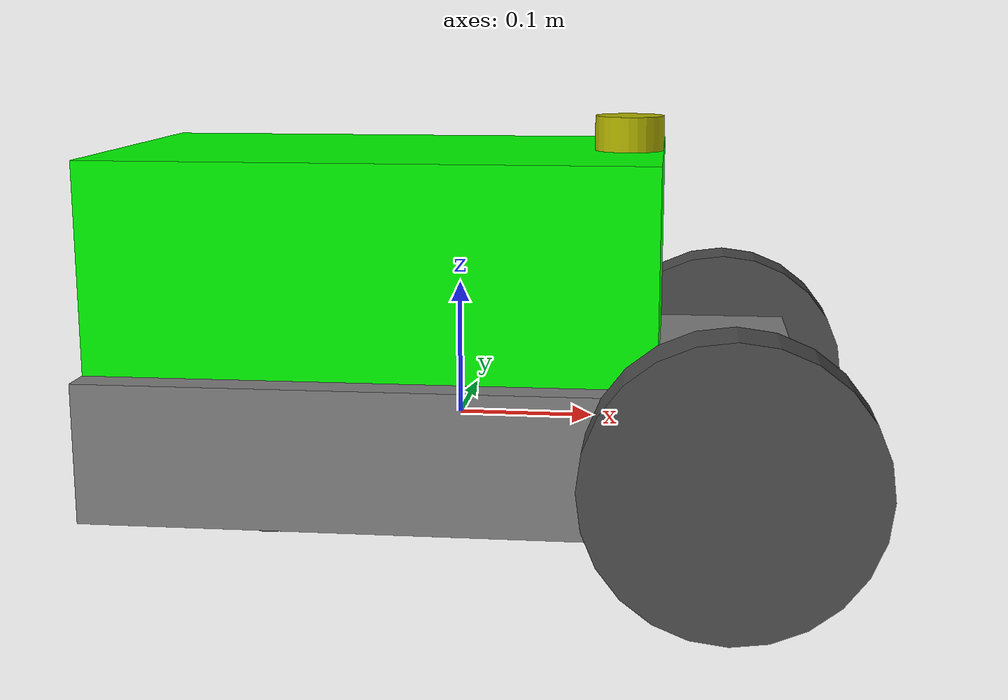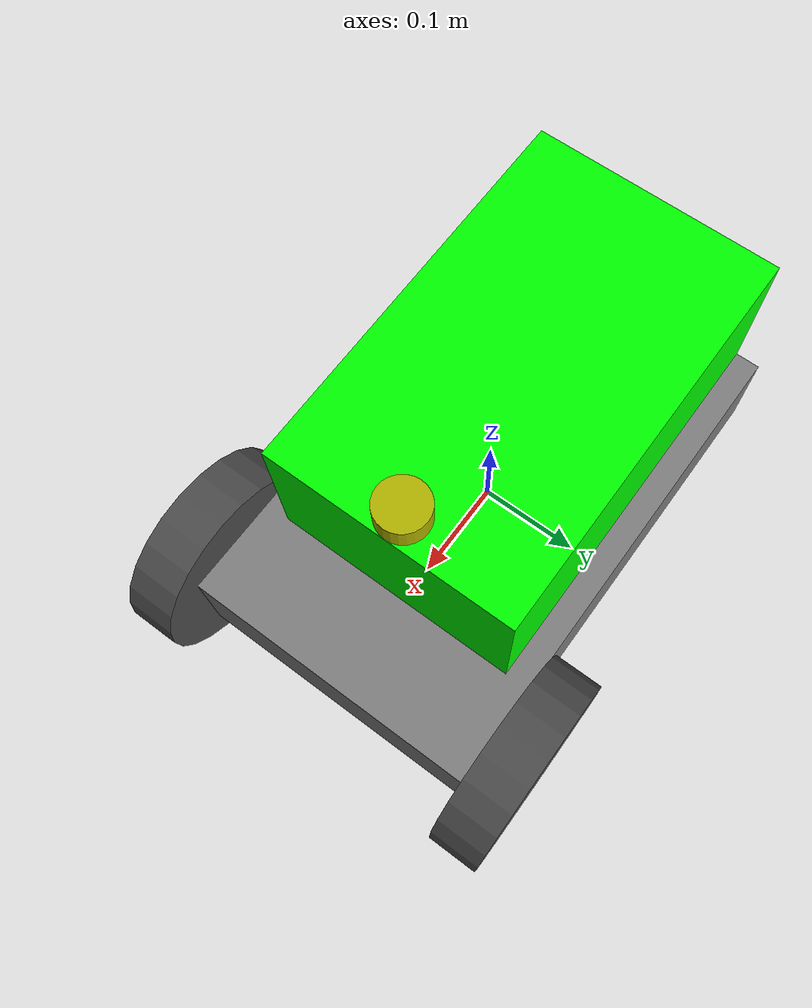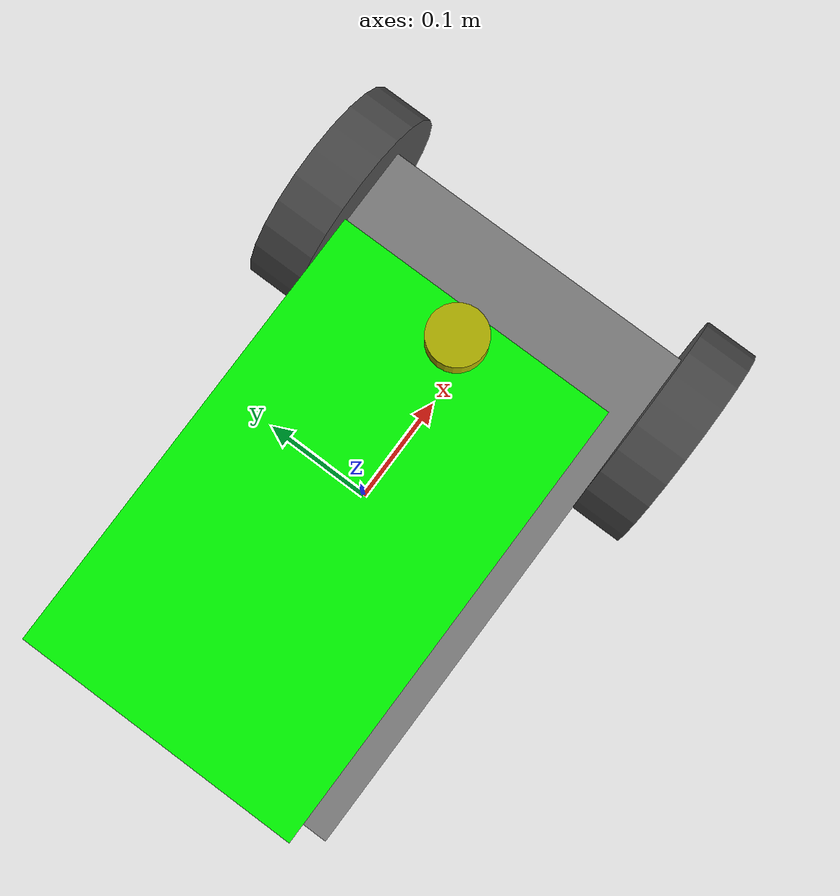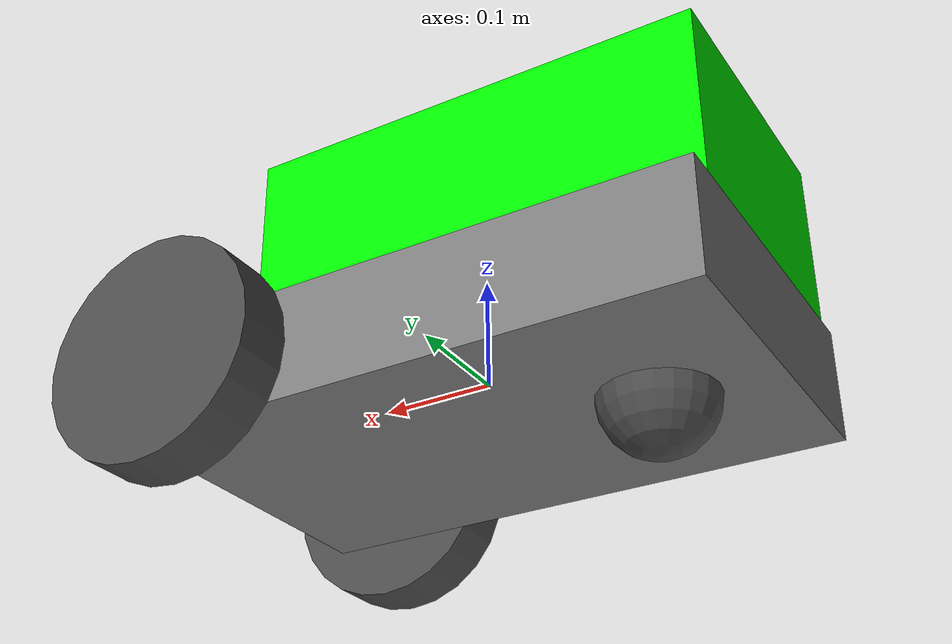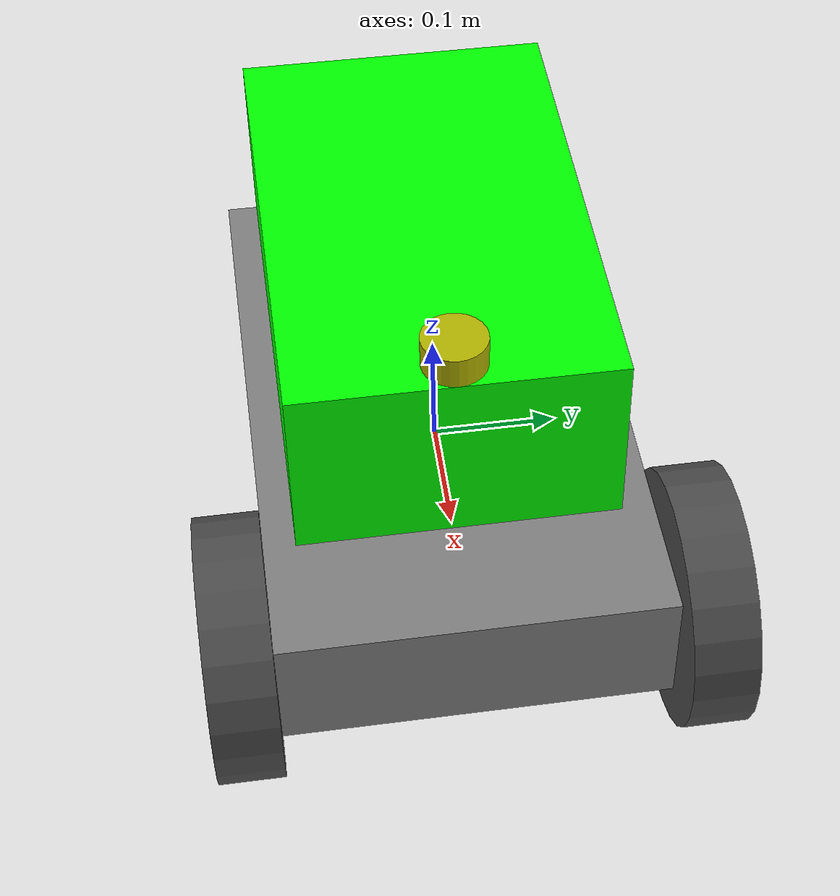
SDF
<?xml version="1.0" ?>
<sdf version="1.5">
     <model name='jetbot'>

      <link name='chassis'>
        <pose>0 0 0 0 0 0</pose>
        <inertial>
          <mass>1.14395</mass>
          <inertia>
            <ixx>0.126164</ixx>
            <ixy>0</ixy>
            <ixz>0</ixz>
            <iyy>0.416519</iyy>
            <iyz>0</iyz>
            <izz>0.481014</izz>
          </inertia>
        </inertial>
        <visual name='visual'>
          <geometry>
            <box>
              <size>0.5 0.3 0.1</size>
            </box>
          </geometry>
          <material>
            <ambient>0.4 0.4 0.4 1</ambient>
            <diffuse>0.5 0.5 0.5 1</diffuse>
          </material>
        </visual>
        <collision name='collision'>
          <geometry>
            <box>
              <size>0.5 0.3 0.1</size>
            </box>
          </geometry>
        </collision>
      </link>

      <link name='cover'>
        <pose>-0.05 0 0.125 0 -0 0</pose>
        <inertial>
          <mass>1.14395</mass>
          <inertia>
            <ixx>0.126164</ixx>
            <ixy>0</ixy>
            <ixz>0</ixz>
            <iyy>0.416519</iyy>
            <iyz>0</iyz>
            <izz>0.481014</izz>
          </inertia>
        </inertial>
        <visual name='visual'>
          <geometry>
            <box>
              <size>0.4 0.25 0.15</size>
            </box>
          </geometry>
          <material>
            <ambient>0 1 0 1</ambient>
            <diffuse>0 1 0 1</diffuse>
          </material>
        </visual>
        <collision name='collision'>
          <geometry>
            <box>
              <size>0.4 0.25 0.15</size>
            </box>
          </geometry>
        </collision>
      </link>

      <link name='left_wheel'>
        <pose>0.2 0.175 0.0 -1.5707 0 0</pose>
        <inertial>
          <mass>2</mass>
          <inertia>
            <ixx>0.145833</ixx>
            <ixy>0</ixy>
            <ixz>0</ixz>
            <iyy>0.145833</iyy>
            <iyz>0</iyz>
            <izz>0.125</izz>
          </inertia>
        </inertial>
        <visual name='visual'>
          <geometry>
            <cylinder>
              <length>0.05</length>
              <radius>0.1</radius>
            </cylinder>
          </geometry>
          <material>
            <ambient>0 0 0 1</ambient>
            <diffuse>0.3 0.3 0.3 1</diffuse>
          </material>
        </visual>
        <collision name='collision'>
          <geometry>
            <cylinder>
              <length>0.05</length>
              <radius>0.1</radius>
            </cylinder>
          </geometry>
          <surface>
            <friction>
              <ode>
                <mu>1</mu>
                <mu2>1</mu2>
                <slip1>0</slip1>
                <slip2>0</slip2>
              </ode>
            </friction>
            <contact>
              <ode>
                <soft_cfm>0</soft_cfm>
                <soft_erp>0.2</soft_erp>
                <kp>1e+13</kp>
                <kd>1</kd>
                <max_vel>0.01</max_vel>
                <min_depth>0.01</min_depth>
              </ode>
            </contact>
          </surface>
        </collision>
      </link>

      <link name='right_wheel'>
        <pose>0.2 -0.175 0.0 -1.5707 0 0</pose>
        <inertial>
          <mass>2</mass>
          <inertia>
            <ixx>0.145833</ixx>
            <ixy>0</ixy>
            <ixz>0</ixz>
            <iyy>0.145833</iyy>
            <iyz>0</iyz>
            <izz>0.125</izz>
          </inertia>
        </inertial>
        <visual name='visual'>
          <geometry>
            <cylinder>
              <length>0.05</length>
              <radius>0.1</radius>
            </cylinder>
          </geometry>
          <material>
            <ambient>0 0 0 1</ambient>
            <diffuse>0.3 0.3 0.3 1</diffuse>
          </material>
        </visual>
        <collision name='collision'>
          <geometry>
            <cylinder>
              <length>0.05</length>
              <radius>0.1</radius>
            </cylinder>
          </geometry>
          <surface>
            <friction>
              <ode>
                <mu>1</mu>
                <mu2>1</mu2>
                <slip1>0</slip1>
                <slip2>0</slip2>
              </ode>
            </friction>
            <contact>
              <ode>
                <soft_cfm>0</soft_cfm>
                <soft_erp>0.2</soft_erp>
                <kp>1e+13</kp>
                <kd>1</kd>
                <max_vel>0.01</max_vel>
                <min_depth>0.01</min_depth>
              </ode>
            </contact>
          </surface>
        </collision>
      </link>

      <link name='caster'>
        <pose>-0.15 -0 -0.05 0 -0 0</pose>
        <inertial>
          <mass>1</mass>
          <inertia>
            <ixx>0.1</ixx>
            <ixy>0</ixy>
            <ixz>0</ixz>
            <iyy>0.1</iyy>
            <iyz>0</iyz>
            <izz>0.1</izz>
          </inertia>
        </inertial>
        <visual name='visual'>
          <geometry>
            <sphere>
              <radius>0.05</radius>
            </sphere>
          </geometry>
          <material>
            <ambient>0 0 0 1</ambient>
            <diffuse>0.3 0.3 0.3 1</diffuse>
          </material>
        </visual>
        <collision name='collision'>
          <geometry>
            <sphere>
              <radius>0.05</radius>
            </sphere>
          </geometry>
        </collision>
      </link>

      <link name="distance_sensor">
        <pose>0.125 0 0.21 0 -0 0</pose>
        <visual name="visual_box">
          <geometry>
            <cylinder>
              <length>0.03</length>
              <radius>0.025</radius>
            </cylinder>
          </geometry>
          <material>
            <ambient>0.7 0.7 0 1</ambient>
            <diffuse>0.7 0.7 0 1</diffuse>
          </material>
        </visual>
        <collision name="collision_box">
          <geometry>
            <cylinder>
              <length>0.05</length>
              <radius>0.05</radius>
            </cylinder>
          </geometry>
          <laser_retro>100.0</laser_retro>
        </collision>

        <!-- ray sensor -->
        <sensor name="sensor_ray_front" type="ray">
          <ray>
            <scan>
              <horizontal>
                <samples>2</samples>
                <resolution>1.0</resolution>
                <min_angle>-0.001</min_angle>
                <max_angle>0.001</max_angle>
              </horizontal>
            </scan>
            <range>
              <min>0.1</min>
              <max>10.0</max>
              <resolution>0.02</resolution>
            </range>
            <noise>
              <type>gaussian</type>
              <mean>0</mean>
              <stddev>0.01</stddev>
            </noise>
          </ray>
          <always_on>true</always_on>
          <update_rate>30.0</update_rate>
          <plugin name="range" filename="libgazebo_ros_ray_sensor.so">
            <ros>
              <namespace>/jetbot</namespace>
              <remapping>~/out:=laser_front</remapping>
            </ros>
            <output_type>sensor_msgs/Range</output_type>
          </plugin>
        </sensor>

        <sensor name="sensor_ray_side" type="ray">
          <pose>0.125 0 0.225 0 -0 1.5708</pose>
          <ray>
            <scan>
              <horizontal>
                <samples>2</samples>
                <resolution>1.0</resolution>
                <min_angle>-0.001</min_angle>
                <max_angle>0.001</max_angle>
              </horizontal>
            </scan>
            <range>
              <min>0.1</min>
              <max>10.0</max>
              <resolution>0.02</resolution>
            </range>
            <noise>
              <type>gaussian</type>
              <mean>0</mean>
              <stddev>0.01</stddev>
            </noise>
          </ray>
          <always_on>true</always_on>
          <update_rate>30.0</update_rate>
          <plugin name="range" filename="libgazebo_ros_ray_sensor.so">
            <ros>
              <namespace>/jetbot</namespace>
              <remapping>~/out:=laser_side</remapping>
            </ros>
            <output_type>sensor_msgs/Range</output_type>
          </plugin>
        </sensor>
      </link>

      <joint name='left_wheel_joint' type='revolute'>
        <parent>chassis</parent>
        <child>left_wheel</child>
        <axis>
          <xyz>0 0 1</xyz>
          <limit>
            <lower>-1.79769e+308</lower>
            <upper>1.79769e+308</upper>
          </limit>
        </axis>
      </joint>

      <joint name='right_wheel_joint' type='revolute'>
        <parent>chassis</parent>
        <child>right_wheel</child>
        <axis>
          <xyz>0 0 1</xyz>
          <limit>
            <lower>-1.79769e+308</lower>
            <upper>1.79769e+308</upper>
          </limit>
        </axis>
      </joint>

      <joint name='caster_wheel' type='ball'>
        <parent>chassis</parent>
        <child>caster</child>
      </joint>

      <joint name='cover_joint' type='fixed'>
        <parent>chassis</parent>
        <child>cover</child>
      </joint>

      <joint name='ray_front_joint' type='fixed'>
        <parent>chassis</parent>
        <child>distance_sensor</child>
      </joint>

      <plugin name='diff_drive' filename='libgazebo_ros_diff_drive.so'>

        <ros>
          <namespace>/jetbot</namespace>
        </ros>

        <!-- wheels -->
        <left_joint>left_wheel_joint</left_joint>
        <right_joint>right_wheel_joint</right_joint>

        <!-- kinematics -->
        <wheel_separation>1.25</wheel_separation>
        <wheel_diameter>0.6</wheel_diameter>

        <!-- limits -->
        <max_wheel_torque>20</max_wheel_torque>
        <max_wheel_acceleration>1.0</max_wheel_acceleration>

        <!-- output -->
        <publish_odom>true</publish_odom>
        <publish_odom_tf>true</publish_odom_tf>
        <publish_wheel_tf>true</publish_wheel_tf>

        <odometry_frame>odom_demo</odometry_frame>
        <robot_base_frame>chassis</robot_base_frame>

      </plugin>

    </model>
</sdf>
